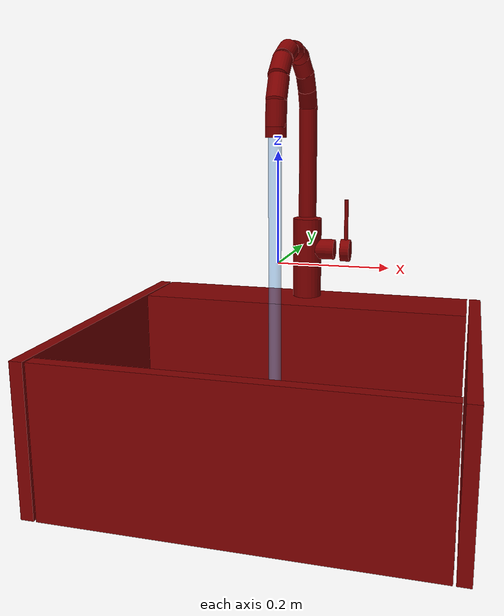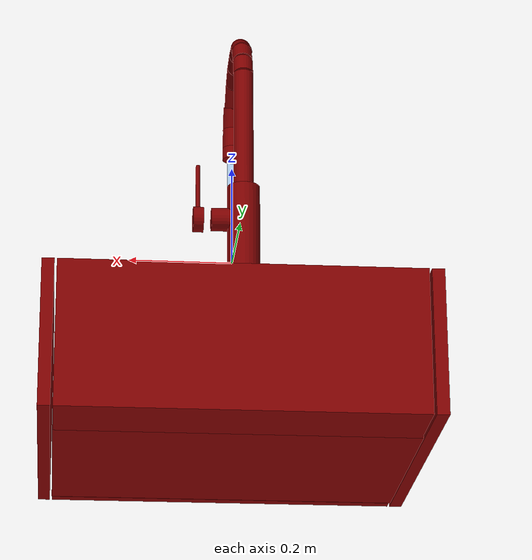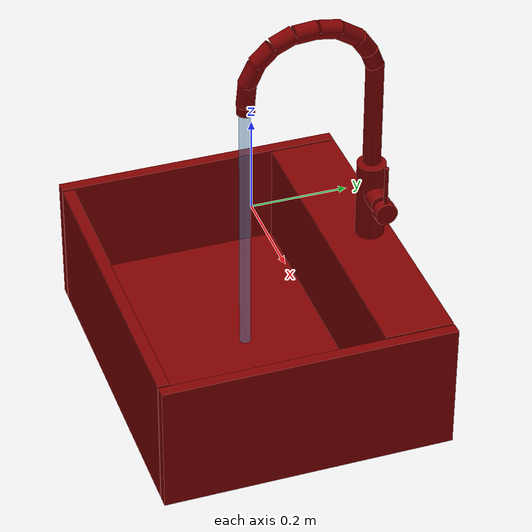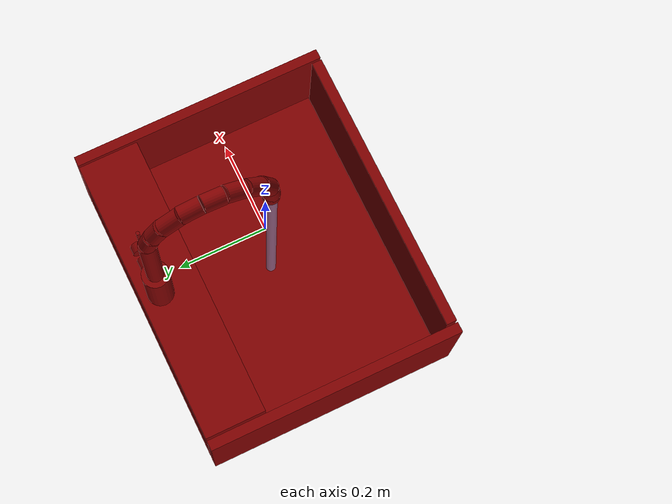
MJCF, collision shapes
<?xml version='1.0' encoding='UTF-8'?>
<mujoco model="model">
  <option timestep="0.002" gravity="0.0 0.0 -9.81"/>
  <compiler angle="radian"/>
  <asset>
    <mesh file="visuals/handle.obj" name="handle_vis"/>
    <mesh file="visuals/Body001.obj" name="Body001_vis"/>
    <mesh file="visuals/spout.obj" name="spout_vis"/>
    <texture file="visuals/T_BC001.png" name="Body001_material" type="2d"/>
    <material name="Body001_material" rgba="1 1 1 1.0" texture="Body001_material" shininess="0.141421377658844" specular="2"/>
    <texture file="visuals/T_BC001.png" name="handle_material" type="2d"/>
    <material name="handle_material" rgba="1 1 1 1.0" texture="handle_material" shininess="0.141421377658844" specular="1"/>
    <texture file="visuals/T_BC001.png" name="spout_material" type="2d"/>
    <material name="spout_material" rgba="1 1 1 1.0" texture="spout_material" shininess="0.141421377658844" specular="1"/>
  </asset>
  <default>
    <default class="visual">
      <geom conaffinity="0" contype="0" group="1" type="mesh"/>
    </default>
    <default class="collision">
      <geom group="0" rgba="0.5 0 0 0.5" solimp="0.998 0.998 0.001" solref="0.001 2"/>
    </default>
    <default class="spawn">
      <geom group="0" rgba="1 1 1 0.5" contype="0" conaffinity="0"/>
      <site group="0" rgba="1 1 1 0.5"/>
    </default>
    <default class="region">
      <geom group="1" conaffinity="0" contype="0" rgba="0 1 0 0"/>
    </default>
  </default>
  <worldbody>
    <body>
      <body name="object">
        <geom mesh="Body001_vis" type="mesh" solimp="0.998 0.998 0.001" solref="0.001 1" friction="0.95 0.3 0.1" class="visual" material="Body001_material"/>
        <geom type="box" pos="-0.3524441123008728 2.0489096641540527e-08 -0.25858035683631897" size="0.011873608455061913 0.3014654517173767 0.1387084275484085" quat="1.0 0.0 0.0 0.0" class="collision"/>
        <geom type="box" pos="0.35296860337257385 -9.313225746154785e-09 -0.25858038663864136" size="0.011349148117005825 0.3014655113220215 0.1387084722518921" quat="1.0 0.0 0.0 0.0" class="collision"/>
        <geom type="box" pos="-0.0007268190383911133 -0.05778009817004204 -0.36705029010772705" size="0.33796435594558716 0.21786673367023468 0.030238520354032516" quat="1.0 0.0 0.0 0.0" class="collision"/>
        <geom type="box" pos="0.0005569830536842346 0.23077604174613953 -0.25858038663864136" size="0.3362390995025635 0.07068934291601181 0.13870851695537567" quat="1.0 0.0 0.0 0.0" class="collision"/>
        <geom type="box" pos="0.0005569830536842346 -0.28945785760879517 -0.25858038663864136" size="0.3362390995025635 0.012007510289549828 0.13870841264724731" quat="1.0 0.0 0.0 0.0" class="collision"/>
        <geom type="cylinder" pos="-0.001985963899642229 0.2551099956035614 -0.035752419382333755" size="0.030178183689713478 0.08440031111240387" quat="1.0 0.0 0.0 0.0" class="collision"/>
        <geom type="cylinder" pos="0.0381937175989151 0.2546387314796448 -0.016625920310616493" size="0.021399369463324547 0.019612431526184082" quat="0.5000000596046448 0.5 0.4999999701976776 0.5" class="collision"/>
        <body name="handle">
          <joint axis="1.0 0.0 0.0" pos="0.07194176316261292 0.254017174243927 -0.017591847106814384" limited="true" name="handle_temp_joint" type="hinge" range="-0.7853981633974483 0.7853981633974483" damping="0.5" frictionloss="1" armature="2"/>
          <joint axis="0.0 1.0 0.0" pos="0.07194176316261292 0.254017174243927 -0.017591847106814384" limited="true" name="handle_joint" type="hinge" range="0 0.5" damping="0.5" frictionloss="1" armature="2"/>
          <geom mesh="handle_vis" type="mesh" solimp="0.998 0.998 0.001" solref="0.001 1" friction="0.95 0.3 0.1" class="visual" material="handle_material"/>
          <geom type="cylinder" pos="0.08161629736423492 0.2537739872932434 -0.017231235280632973" size="0.02353030815720558 0.009531225077807903" quat="0.5000000596046448 0.5 0.4999999701976776 0.5" class="collision"/>
          <geom name="handle_main" type="cylinder" pos="0.08213990181684494 0.2537529766559601 0.04715613275766373" size="0.004157292190939188 0.04314939305186272" quat="5.338507946817117e-08 0.7071068286895752 0.7071067094802856 5.338507591545749e-08" class="collision"/>
        </body>
        <body name="spout">
          <joint axis="0.0 0.0 1.0" pos="-0.0030321134254336357 0.25473126769065857 0.22855141758918762" limited="true" name="spout_joint" range="-1.0471975511965976 1.0471975511965976" type="hinge" damping="10"/>
          <site type="cylinder" rgba="0.5 0.75 1 0.5" size="0.011609296314418316 0.2936442196369171" pos="-0.00281657837331295 -0.012468467466533184 -0.05398388206958771" name="water"/>
          <geom mesh="spout_vis" type="mesh" solimp="0.998 0.998 0.001" solref="0.001 1" friction="0.95 0.3 0.1" class="visual" material="spout_material"/>
          <geom type="cylinder" pos="-0.001985963899642229 0.2551099956035614 0.1680082082748413" size="0.01867983676493168 0.1152455285191536" quat="1.0 0.0 0.0 0.0" class="collision" name="spout_main"/>
          <geom type="cylinder" pos="-0.001985963899642229 0.22945097088813782 0.33195406198501587" size="0.01867983676493168 0.019234102219343185" quat="0.9550366401672363 0.29648786783218384 -7.311360098850056e-17 7.311360760594546e-17" class="collision"/>
          <geom type="cylinder" pos="-0.003100561909377575 0.1576118916273117 0.3783402144908905" size="0.01867983676493168 0.023211244493722916" quat="0.6504695415496826 -0.7595323324203491 -1.6865005668006397e-16 -5.628278406301753e-24" class="collision"/>
          <geom type="cylinder" pos="-0.001985963899642229 0.2478446066379547 0.2981155216693878" size="0.01867983676493168 0.018054183572530746" quat="0.9834555983543396 0.18114937841892242 -2.589090371978125e-17 8.142348223762665e-18" class="collision"/>
          <geom type="cylinder" pos="-0.003100561909377575 0.1980898380279541 0.3608796298503876" size="0.01867983676493168 0.024418875575065613" quat="6.614553171857551e-08 -3.6396450298070704e-08 0.48208558559417725 -0.8761241436004639" class="collision"/>
          <geom type="cylinder" pos="-0.003100561909377575 0.11066237092018127 0.3805367052555084" size="0.01867983676493168 0.023211244493722916" quat="0.7335634827613831 -0.6796209216117859 -1.5090617227296447e-16 1.880512184959177e-23" class="collision"/>
          <geom type="cylinder" pos="-0.003100561909377575 0.06645843386650085 0.3712017238140106" size="0.01867983676493168 0.023211244493722916" quat="0.8416051268577576 -0.5400933623313904 -1.1992481726150536e-16 -4.2665687209284984e-23" class="collision"/>
          <geom type="cylinder" pos="-0.003100561909377575 0.026921994984149933 0.34456953406333923" size="0.01867983676493168 0.023211244493722916" quat="0.9195057153701782 -0.39307668805122375 -8.728055128612885e-17 -2.358671229644574e-23" class="collision"/>
          <geom type="cylinder" pos="-0.001114597893320024 0.00029224343597888947 0.30757367610931396" size="0.01867983676493168 0.023211244493722916" quat="0.9744263291358948 -0.22470727562904358 -4.9895044858276e-17 -1.565873119645604e-23" class="collision"/>
          <geom type="cylinder" pos="-0.001114597893320024 -0.010003702715039253 0.26505520939826965" size="0.01867983676493168 0.023211244493722916" quat="0.9989654421806335 -0.04547516629099846 -1.0097511197081791e-17 -1.2563359333504573e-23" class="collision"/>
          <geom type="cylinder" pos="-0.000953328562900424 -0.011199960485100746 0.2366466522216797" size="0.01867983676493168 0.012093055993318558" quat="1.0 0.0 0.0 0.0" class="collision"/>
        </body>
        <geom class="region" name="reg_basin" type="box" pos="0.0012315958738327026 -0.05810888111591339 -0.23024485260248184" size="0.3290603736639023 0.2024736384153366 0.10583314841985703"/>
        <geom class="region" name="reg_main" type="box" pos="-7.450580596923828e-09 0.0 -0.25858038663864136" size="0.36531771516799927 0.3024655411243439 0.1397084573507309"/>
      </body>
    </body>
  </worldbody>
  <actuator>
    <motor name="handle_joint_actuator" joint="handle_joint" gear="10"/>
    <motor name="handle_temp_joint_actuator" joint="handle_temp_joint" gear="10"/>
    <motor name="spout_joint_actuator" joint="spout_joint" gear="10"/>
  </actuator>
</mujoco>
